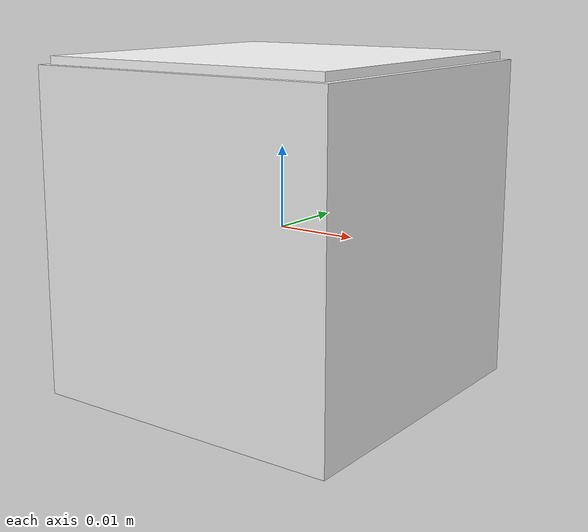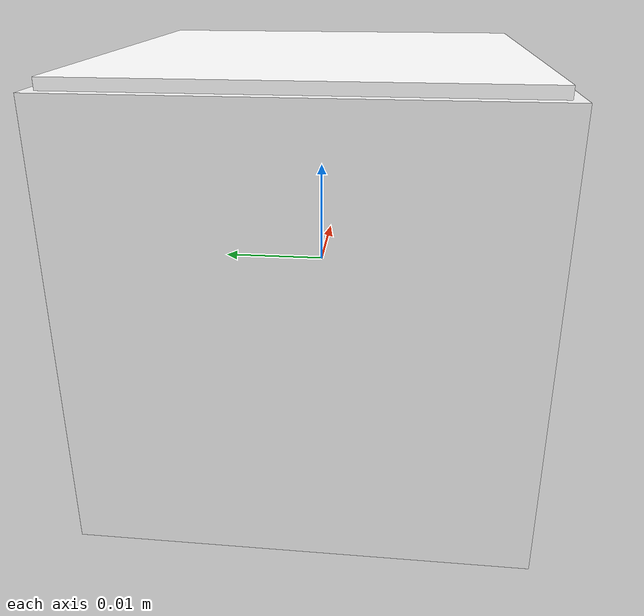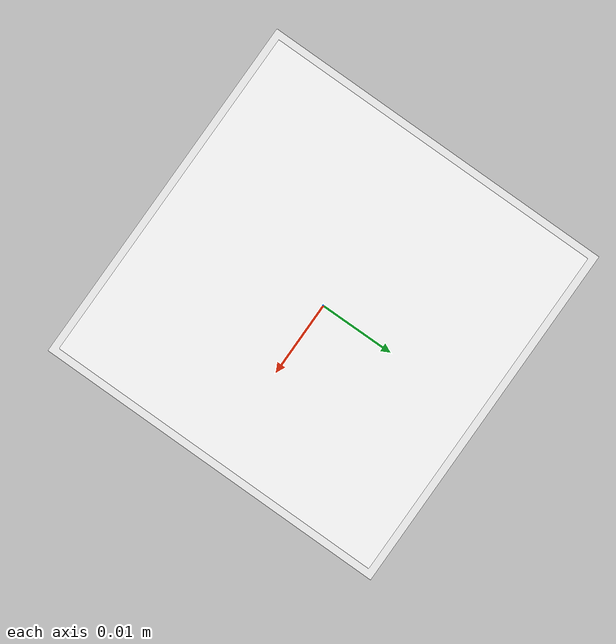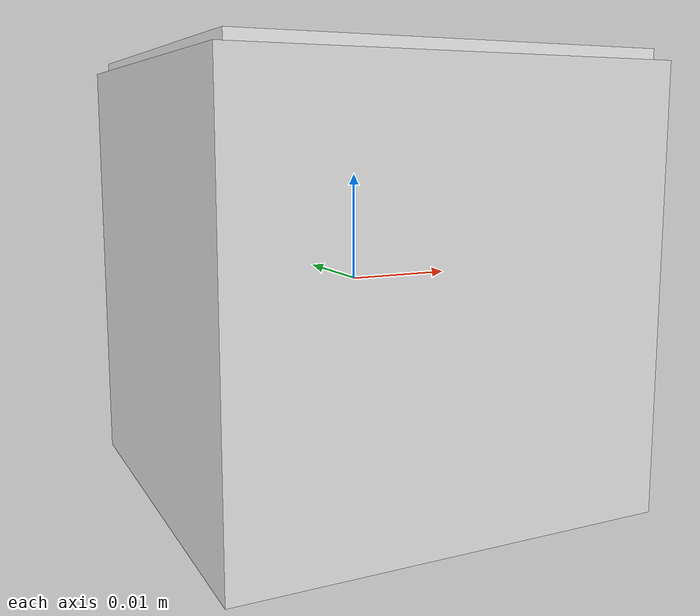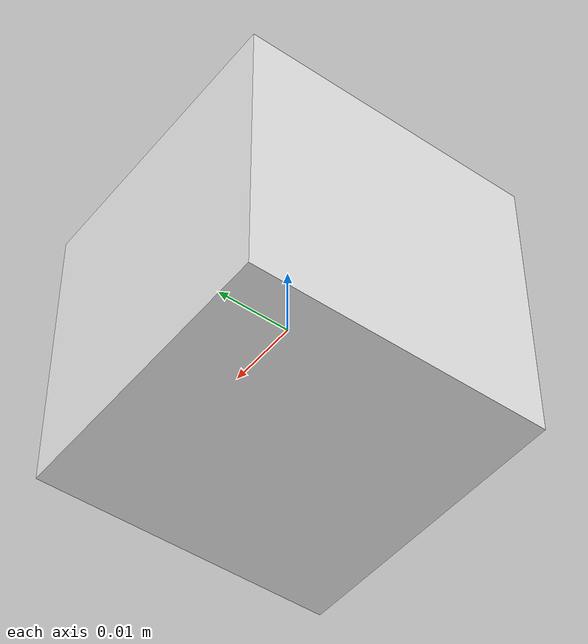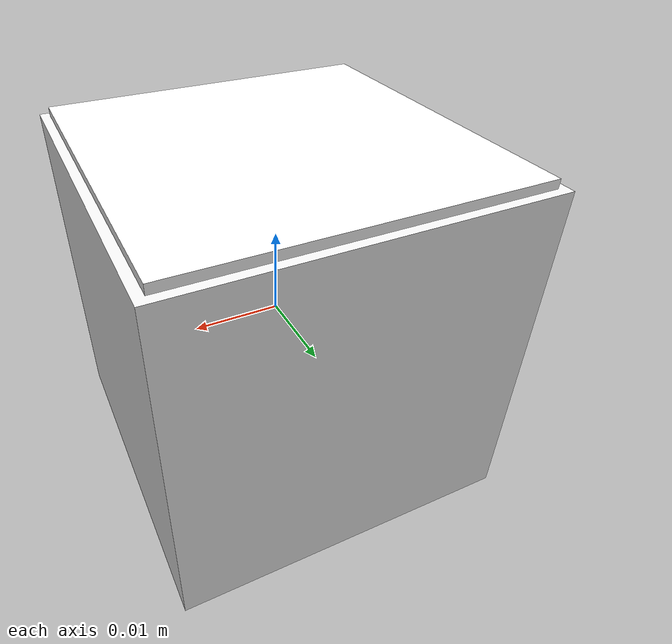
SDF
<?xml version="1.0"?>
<sdf version="1.9">
  <model name="aruco_cube">
    <link name="link">
      <inertial>
        <mass>0.02</mass>
        <inertia>
          <ixx>5.33e-6</ixx><iyy>5.33e-6</iyy><izz>5.33e-6</izz>
          <ixy>0</ixy><ixz>0</ixz><iyz>0</iyz>
        </inertia>
      </inertial>
      <collision name="collision">
        <geometry><box><size>0.04 0.04 0.04</size></box></geometry>
      </collision>
      <!-- Corps blanc mat -->
      <visual name="body">
        <geometry><box><size>0.04 0.04 0.04</size></box></geometry>
        <material>
          <ambient>0.9 0.9 0.9 1</ambient>
          <diffuse>0.95 0.95 0.95 1</diffuse>
          <specular>0.05 0.05 0.05 1</specular>
        </material>
      </visual>
      <!-- Tuile marqueur sur le dessus (z = 0.02 + 0.0005) -->
      <visual name="marker">
        <pose>0 0 0.0205 0 0 0</pose>
        <geometry><box><size>0.038 0.038 0.001</size></box></geometry>
        <material>
          <ambient>1 1 1 1</ambient>
          <diffuse>1 1 1 1</diffuse>
          <pbr>
            <metal>
              <albedo_map>aruco_cube/materials/textures/aruco_0.png</albedo_map>
              <metalness>0.0</metalness>
              <roughness>1.0</roughness>
            </metal>
          </pbr>
        </material>
      </visual>
    </link>
  </model>
</sdf>
